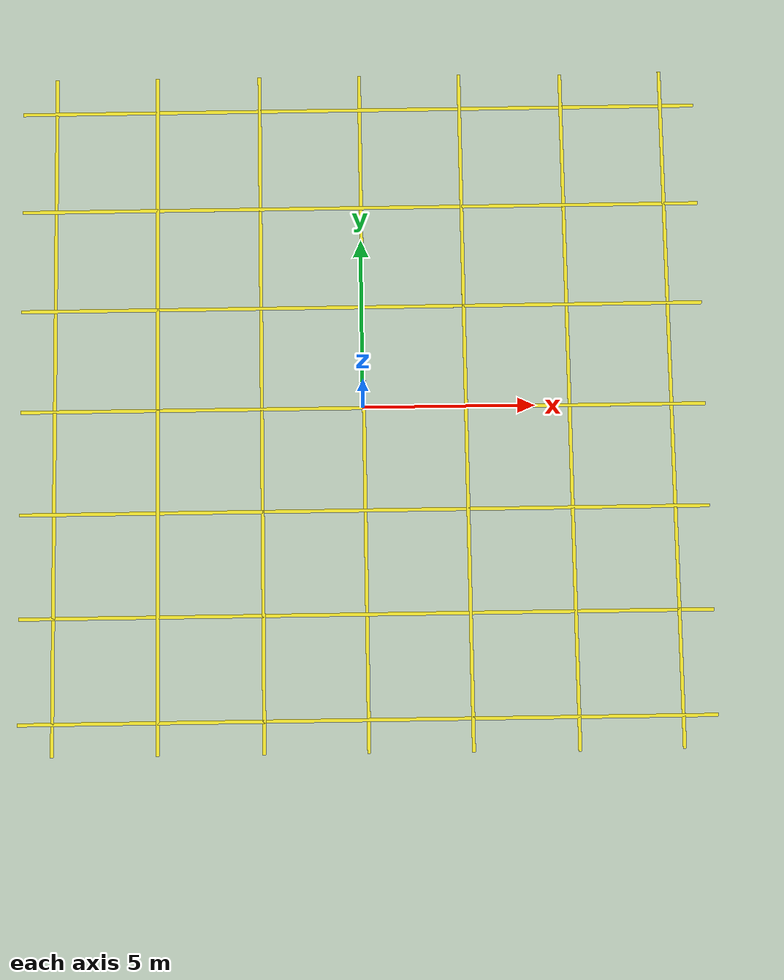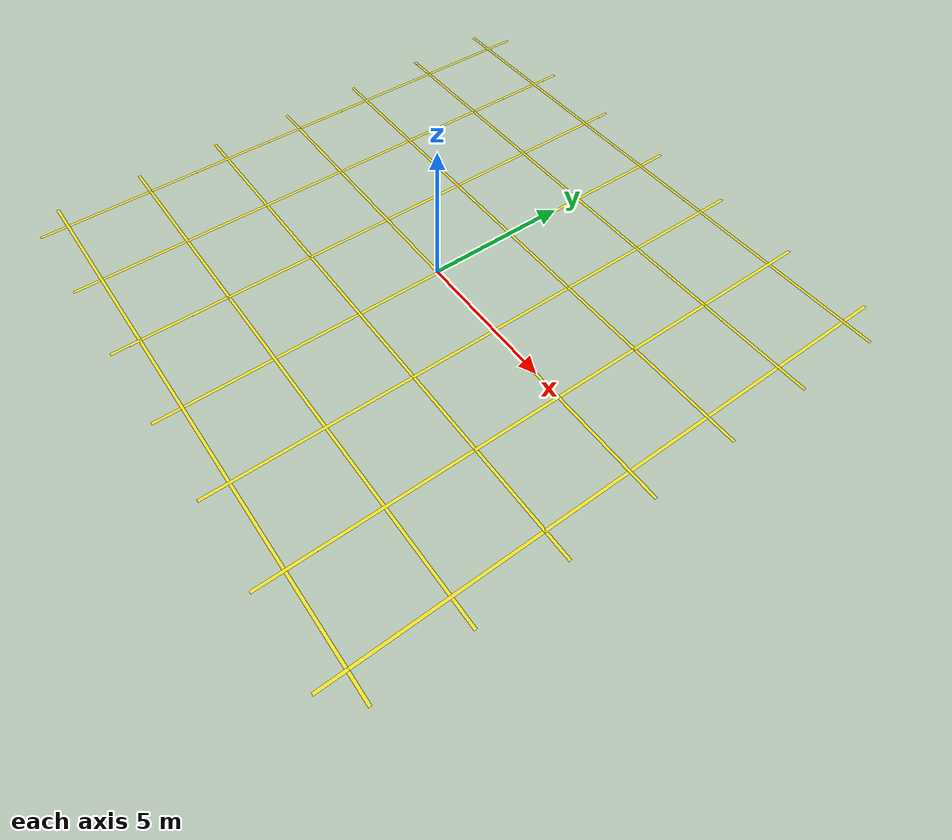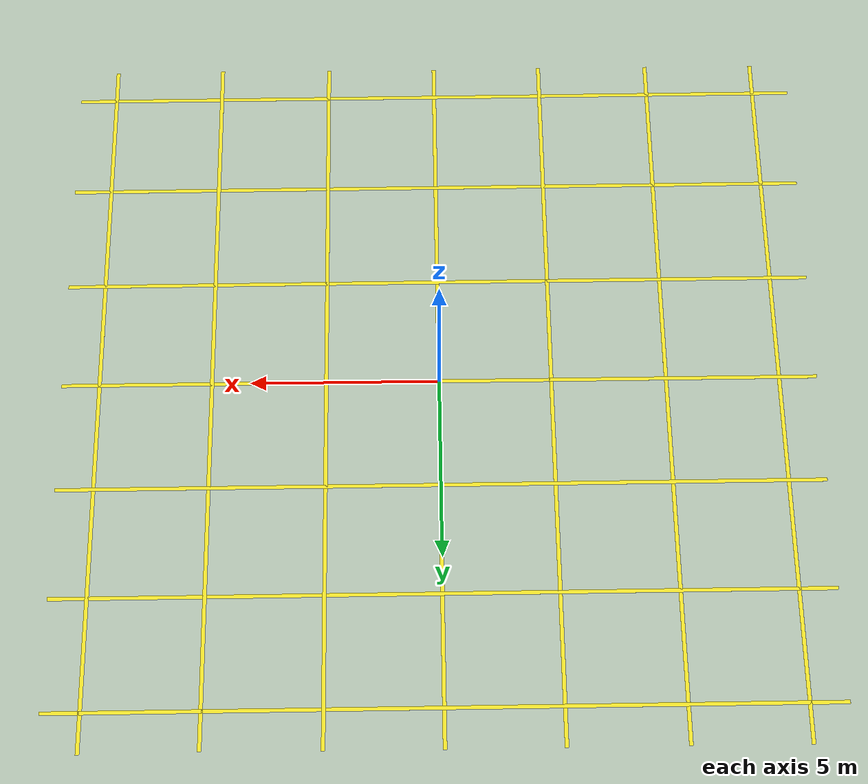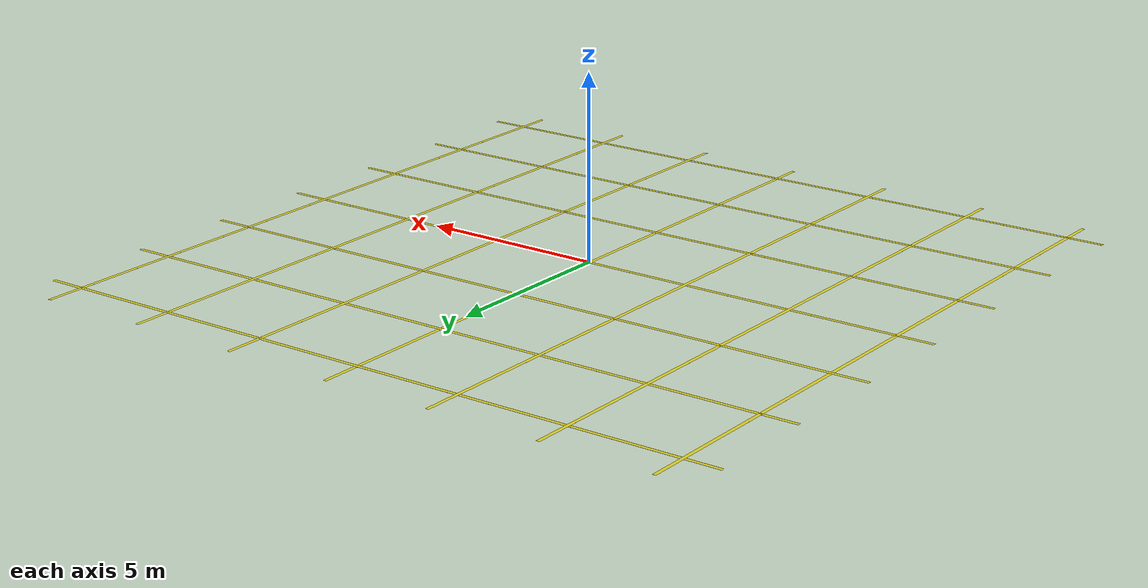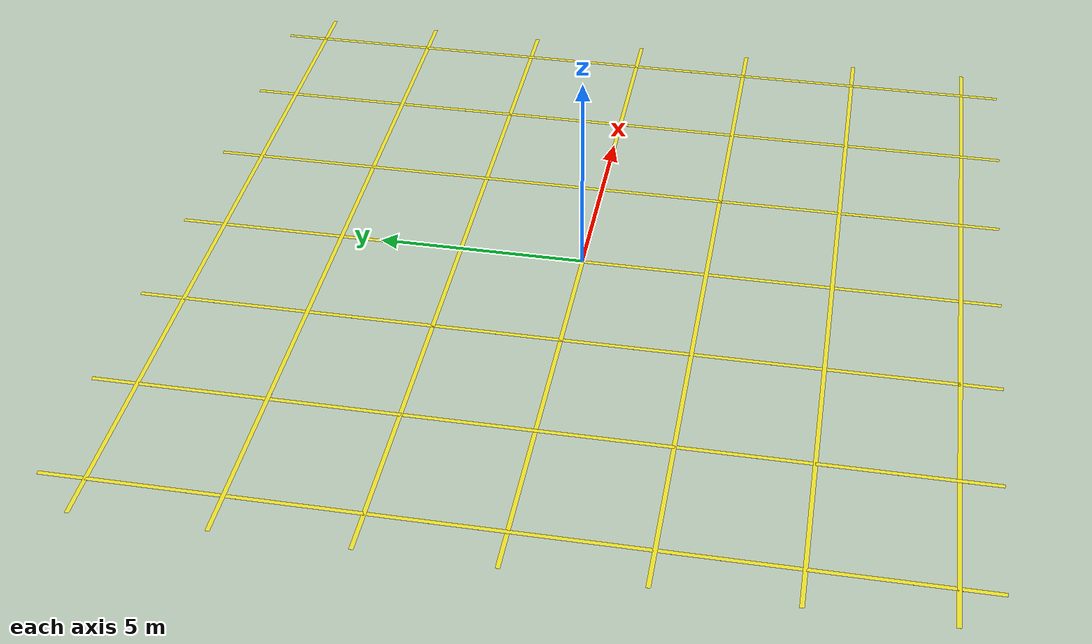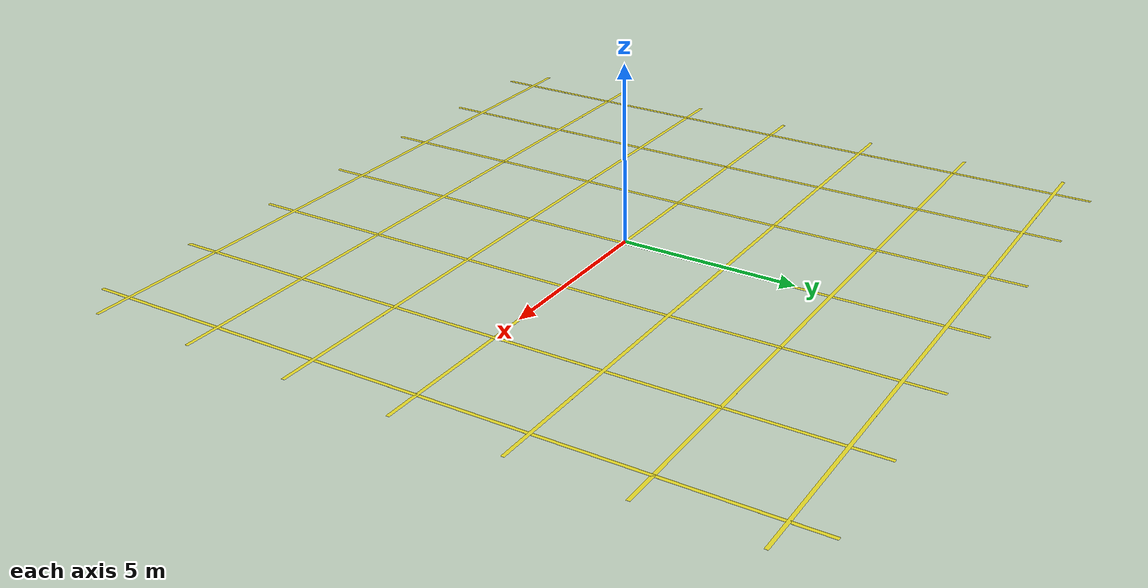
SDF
<sdf version="1.7">
 <world name="default">
  <light name="sun" type="directional">
   <pose>0 0 10 0 -0 0</pose>
   <diffuse>0.8 0.8 0.8 1</diffuse>
   <specular>0.1 0.1 0.1 1</specular>
   <attenuation>
    <range>1000</range>
    <constant>0.9</constant>
    <linear>0.01</linear>
    <quadratic>0.001</quadratic>
   </attenuation>
   <direction>-0.5 0.5 -1</direction>
   <spot><inner_angle>0</inner_angle><outer_angle>0</outer_angle><falloff>0</falloff></spot>
  </light>
  <gravity>0 0 -9.8</gravity>
  <magnetic_field>6e-06 2.3e-05 -4.2e-05</magnetic_field>
  <atmosphere type="adiabatic"/>
  <physics name="default_physics" default="0" type="ode">
   <max_step_size>0.001</max_step_size>
   <real_time_factor>1</real_time_factor>
   <real_time_update_rate>1000</real_time_update_rate>
  </physics>
  <scene><ambient>0.4 0.4 0.4 1</ambient><background>0.7 0.7 0.7 1</background><shadows>1</shadows></scene>
  <spherical_coordinates>
   <surface_model>EARTH_WGS84</surface_model>
   <latitude_deg>0</latitude_deg>
   <longitude_deg>0</longitude_deg>
   <elevation>0</elevation>
   <heading_deg>0</heading_deg>
  </spherical_coordinates>
  <model name="yellow line">
   <static>1</static>
   <link name="link_ground">
    <collision name="collision">
     <geometry><plane><normal>0 0 1</normal><size>0.1 15</size></plane></geometry>
     <surface><friction><ode><mu>100</mu><mu2>50</mu2></ode></friction></surface>
    </collision>
    <visual name="visual_ground">
     <cast_shadows>0</cast_shadows>
     <geometry><plane><normal>0 0 1</normal><size>0.1 20</size></plane></geometry>
     <material>
      <script><uri>file://media/materials/scripts/gazebo.material</uri><name>Gazebo/Yellow</name></script>
     </material>
    </visual>
   </link>
   <pose>0.020958 0.059687 0 0 -0 0</pose>
  </model>
  <model name="yellow line_0">
   <static>1</static>
   <link name="link_ground">
    <collision name="collision">
     <geometry><plane><normal>0 0 1</normal><size>0.1 15</size></plane></geometry>
     <surface><friction><ode><mu>100</mu><mu2>50</mu2></ode></friction></surface>
    </collision>
    <visual name="visual_ground">
     <cast_shadows>0</cast_shadows>
     <geometry><plane><normal>0 0 1</normal><size>0.1 20</size></plane></geometry>
     <material>
      <script><uri>file://media/materials/scripts/gazebo.material</uri><name>Gazebo/Yellow</name></script>
     </material>
    </visual>
   </link>
   <pose>-2.95859 0.058708 0 0 -0 0</pose>
  </model>
  <model name="yellow line_1">
   <static>1</static>
   <link name="link_ground">
    <collision name="collision">
     <geometry><plane><normal>0 0 1</normal><size>0.1 15</size></plane></geometry>
     <surface><friction><ode><mu>100</mu><mu2>50</mu2></ode></friction></surface>
    </collision>
    <visual name="visual_ground">
     <cast_shadows>0</cast_shadows>
     <geometry><plane><normal>0 0 1</normal><size>0.1 20</size></plane></geometry>
     <material>
      <script><uri>file://media/materials/scripts/gazebo.material</uri><name>Gazebo/Yellow</name></script>
     </material>
    </visual>
   </link>
   <pose>-6 0.059687 0 0 -0 0</pose>
  </model>
  <model name="yellow line_2">
   <static>1</static>
   <link name="link_ground">
    <collision name="collision">
     <geometry><plane><normal>0 0 1</normal><size>0.1 15</size></plane></geometry>
     <surface><friction><ode><mu>100</mu><mu2>50</mu2></ode></friction></surface>
    </collision>
    <visual name="visual_ground">
     <cast_shadows>0</cast_shadows>
     <geometry><plane><normal>0 0 1</normal><size>0.1 20</size></plane></geometry>
     <material>
      <script><uri>file://media/materials/scripts/gazebo.material</uri><name>Gazebo/Yellow</name></script>
     </material>
    </visual>
   </link>
   <pose>-9 0.059687 0 0 -0 0</pose>
  </model>
  <model name="yellow line_3">
   <static>1</static>
   <link name="link_ground">
    <collision name="collision">
     <geometry><plane><normal>0 0 1</normal><size>0.1 15</size></plane></geometry>
     <surface><friction><ode><mu>100</mu><mu2>50</mu2></ode></friction></surface>
    </collision>
    <visual name="visual_ground">
     <cast_shadows>0</cast_shadows>
     <geometry><plane><normal>0 0 1</normal><size>0.1 20</size></plane></geometry>
     <material>
      <script><uri>file://media/materials/scripts/gazebo.material</uri><name>Gazebo/Yellow</name></script>
     </material>
    </visual>
   </link>
   <pose>3 0.059687 0 0 -0 0</pose>
  </model>
  <model name="yellow line_4">
   <static>1</static>
   <link name="link_ground">
    <collision name="collision">
     <geometry><plane><normal>0 0 1</normal><size>0.1 15</size></plane></geometry>
     <surface><friction><ode><mu>100</mu><mu2>50</mu2></ode></friction></surface>
    </collision>
    <visual name="visual_ground">
     <cast_shadows>0</cast_shadows>
     <geometry><plane><normal>0 0 1</normal><size>0.1 20</size></plane></geometry>
     <material>
      <script><uri>file://media/materials/scripts/gazebo.material</uri><name>Gazebo/Yellow</name></script>
     </material>
    </visual>
   </link>
   <pose>6.0248 0.02316 0 0 -0 0</pose>
  </model>
  <model name="yellow line_5">
   <static>1</static>
   <link name="link_ground">
    <collision name="collision">
     <geometry><plane><normal>0 0 1</normal><size>0.1 15</size></plane></geometry>
     <surface><friction><ode><mu>100</mu><mu2>50</mu2></ode></friction></surface>
    </collision>
    <visual name="visual_ground">
     <cast_shadows>0</cast_shadows>
     <geometry><plane><normal>0 0 1</normal><size>0.1 20</size></plane></geometry>
     <material>
      <script><uri>file://media/materials/scripts/gazebo.material</uri><name>Gazebo/Yellow</name></script>
     </material>
    </visual>
   </link>
   <pose>9 0.059687 0 0 -0 0</pose>
  </model>
  <model name="yellow line_6">
   <static>1</static>
   <link name="link_ground">
    <collision name="collision">
     <geometry><plane><normal>0 0 1</normal><size>0.1 15</size></plane></geometry>
     <surface><friction><ode><mu>100</mu><mu2>50</mu2></ode></friction></surface>
    </collision>
    <visual name="visual_ground">
     <cast_shadows>0</cast_shadows>
     <geometry><plane><normal>0 0 1</normal><size>0.1 20</size></plane></geometry>
     <material>
      <script><uri>file://media/materials/scripts/gazebo.material</uri><name>Gazebo/Yellow</name></script>
     </material>
    </visual>
   </link>
   <pose>0 0 0 0 -0 1.57</pose>
  </model>
  <model name="yellow line_7">
   <static>1</static>
   <link name="link_ground">
    <collision name="collision">
     <geometry><plane><normal>0 0 1</normal><size>0.1 15</size></plane></geometry>
     <surface><friction><ode><mu>100</mu><mu2>50</mu2></ode></friction></surface>
    </collision>
    <visual name="visual_ground">
     <cast_shadows>0</cast_shadows>
     <geometry><plane><normal>0 0 1</normal><size>0.1 20</size></plane></geometry>
     <material>
      <script><uri>file://media/materials/scripts/gazebo.material</uri><name>Gazebo/Yellow</name></script>
     </material>
    </visual>
   </link>
   <pose>0 -3 0 0 -0 1.5708</pose>
  </model>
  <model name="yellow line_8">
   <static>1</static>
   <link name="link_ground">
    <collision name="collision">
     <geometry><plane><normal>0 0 1</normal><size>0.1 15</size></plane></geometry>
     <surface><friction><ode><mu>100</mu><mu2>50</mu2></ode></friction></surface>
    </collision>
    <visual name="visual_ground">
     <cast_shadows>0</cast_shadows>
     <geometry><plane><normal>0 0 1</normal><size>0.1 20</size></plane></geometry>
     <material>
      <script><uri>file://media/materials/scripts/gazebo.material</uri><name>Gazebo/Yellow</name></script>
     </material>
    </visual>
   </link>
   <pose>0 9 0 0 -0 1.5708</pose>
  </model>
  <model name="yellow line_9">
   <static>1</static>
   <link name="link_ground">
    <collision name="collision">
     <geometry><plane><normal>0 0 1</normal><size>0.1 15</size></plane></geometry>
     <surface><friction><ode><mu>100</mu><mu2>50</mu2></ode></friction></surface>
    </collision>
    <visual name="visual_ground">
     <cast_shadows>0</cast_shadows>
     <geometry><plane><normal>0 0 1</normal><size>0.1 20</size></plane></geometry>
     <material>
      <script><uri>file://media/materials/scripts/gazebo.material</uri><name>Gazebo/Yellow</name></script>
     </material>
    </visual>
   </link>
   <pose>0 -9 0 0 -0 1.5708</pose>
  </model>
  <model name="yellow line_10">
   <static>1</static>
   <link name="link_ground">
    <collision name="collision">
     <geometry><plane><normal>0 0 1</normal><size>0.1 15</size></plane></geometry>
     <surface><friction><ode><mu>100</mu><mu2>50</mu2></ode></friction></surface>
    </collision>
    <visual name="visual_ground">
     <cast_shadows>0</cast_shadows>
     <geometry><plane><normal>0 0 1</normal><size>0.1 20</size></plane></geometry>
     <material>
      <script><uri>file://media/materials/scripts/gazebo.material</uri><name>Gazebo/Yellow</name></script>
     </material>
    </visual>
   </link>
   <pose>0 3 0 0 -0 1.5708</pose>
  </model>
  <model name="yellow line_11">
   <static>1</static>
   <link name="link_ground">
    <collision name="collision">
     <geometry><plane><normal>0 0 1</normal><size>0.1 15</size></plane></geometry>
     <surface><friction><ode><mu>100</mu><mu2>50</mu2></ode></friction></surface>
    </collision>
    <visual name="visual_ground">
     <cast_shadows>0</cast_shadows>
     <geometry><plane><normal>0 0 1</normal><size>0.1 20</size></plane></geometry>
     <material>
      <script><uri>file://media/materials/scripts/gazebo.material</uri><name>Gazebo/Yellow</name></script>
     </material>
    </visual>
   </link>
   <pose>0 -6 0 0 -0 1.5708</pose>
  </model>
  <model name="yellow line_12">
   <static>1</static>
   <link name="link_ground">
    <collision name="collision">
     <geometry><plane><normal>0 0 1</normal><size>0.1 15</size></plane></geometry>
     <surface><friction><ode><mu>100</mu><mu2>50</mu2></ode></friction></surface>
    </collision>
    <visual name="visual_ground">
     <cast_shadows>0</cast_shadows>
     <geometry><plane><normal>0 0 1</normal><size>0.1 20</size></plane></geometry>
     <material>
      <script><uri>file://media/materials/scripts/gazebo.material</uri><name>Gazebo/Yellow</name></script>
     </material>
    </visual>
   </link>
   <pose>0 6 0 0 -0 1.5708</pose>
  </model>
 </world>
</sdf>
